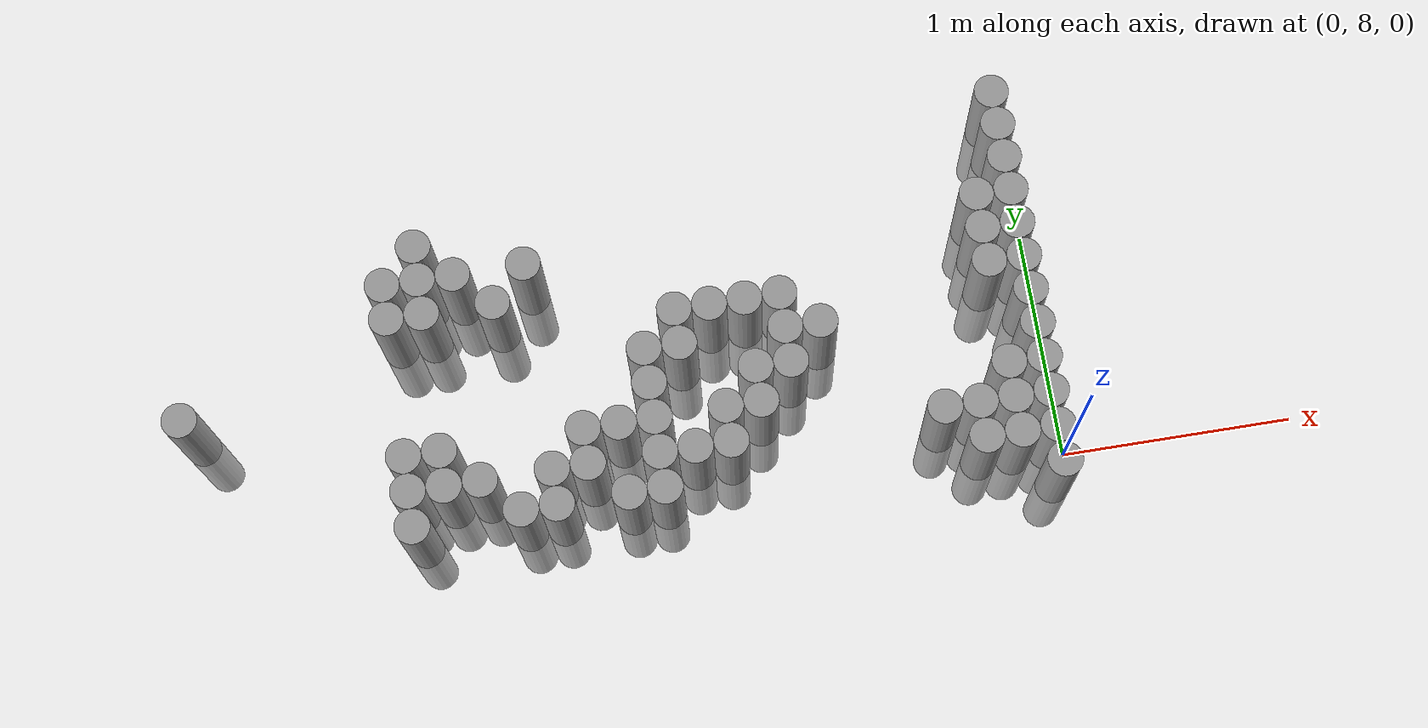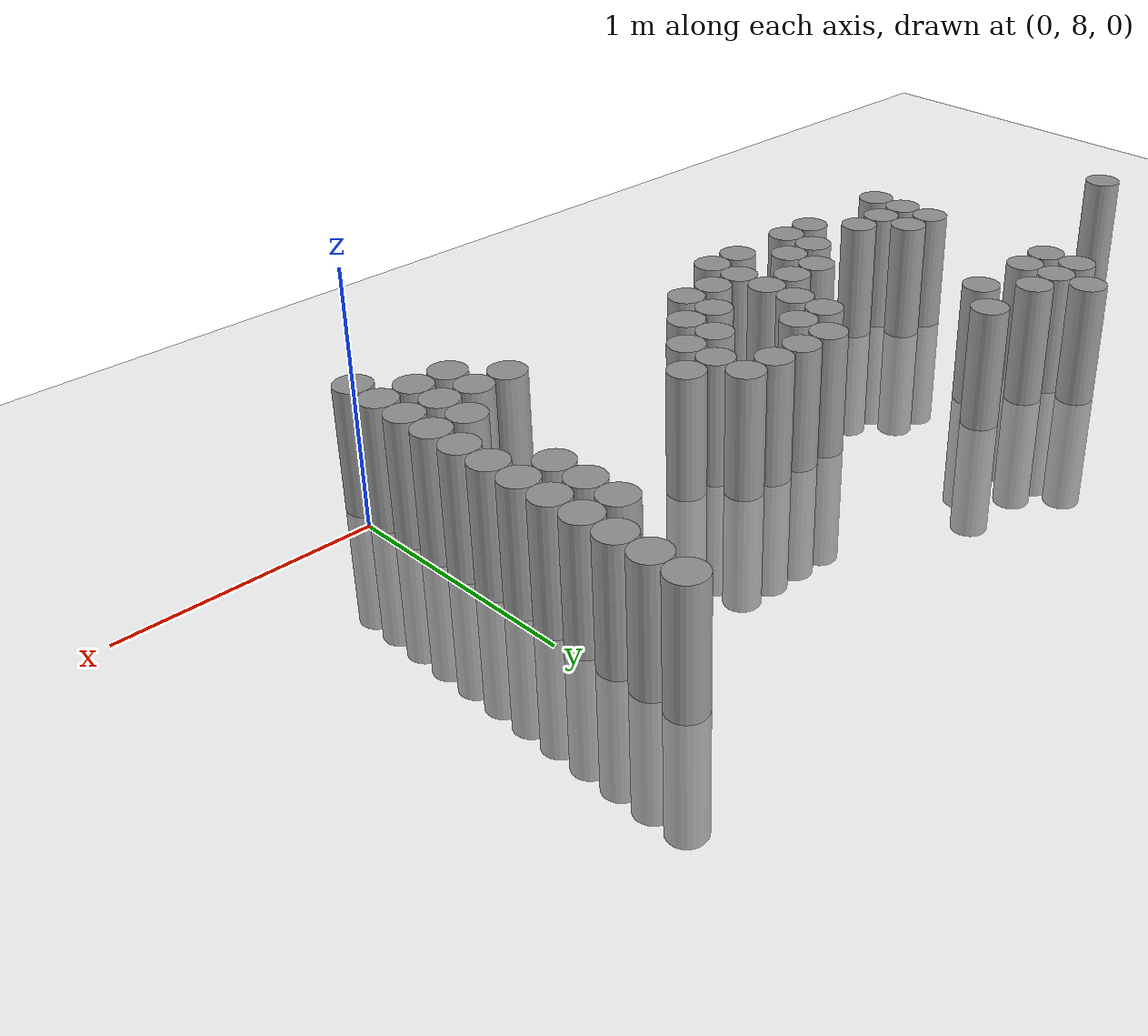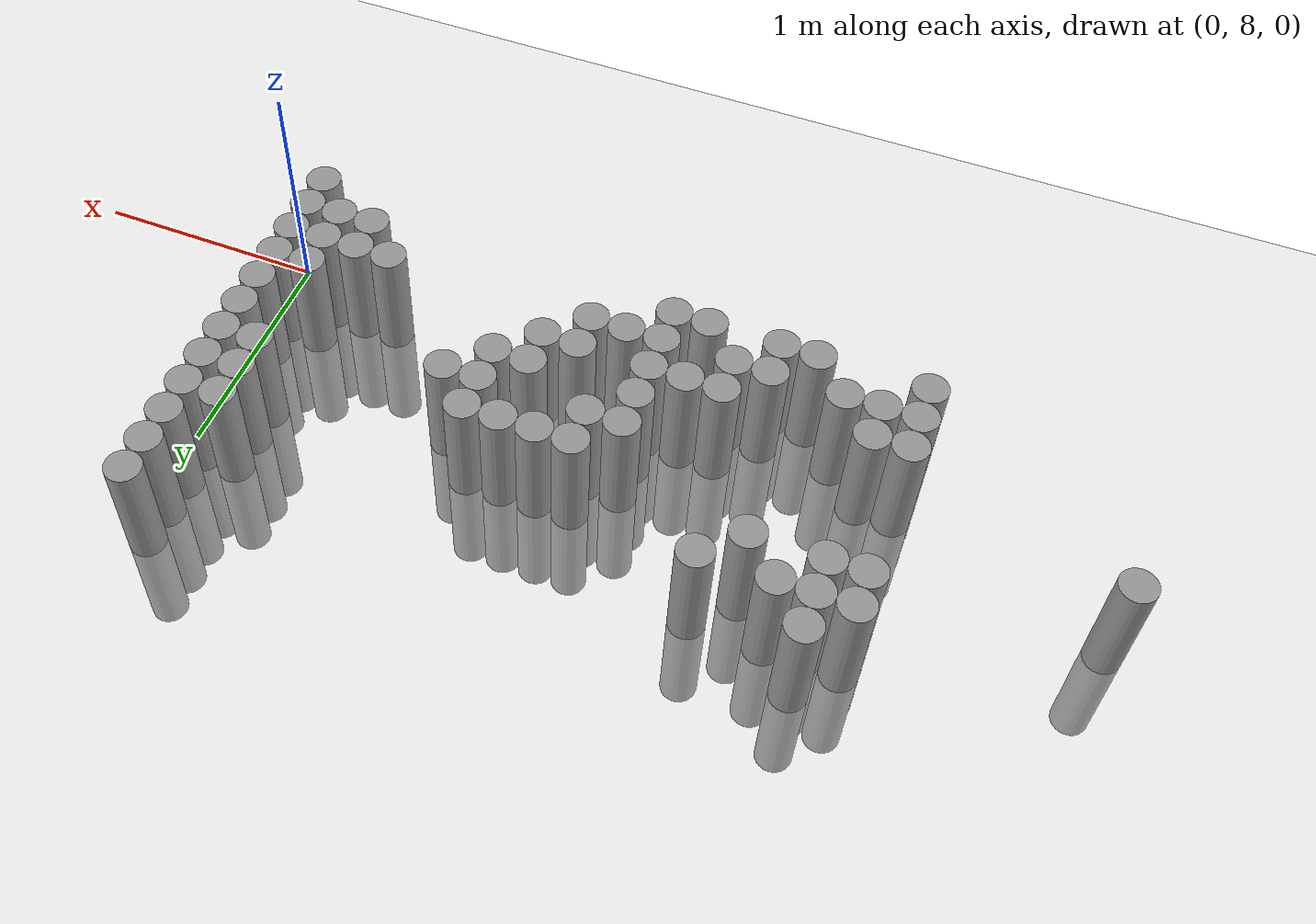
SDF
<sdf version="1.6">
 <world name="default">
  <model name="ground_plane">
   <static>1</static>
   <static>1</static>
   <link name="link">
    <collision name="collision">
     <geometry><plane><normal>0 0 1</normal><size>100 100</size></plane></geometry>
     <surface><friction><ode><mu>100</mu><mu2>50</mu2></ode></friction></surface>
    </collision>
    <visual name="visual">
     <cast_shadows>0</cast_shadows>
     <geometry><plane><normal>0 0 1</normal><size>100 100</size></plane></geometry>
     <material>
      <script><uri>file://media/materials/scripts/gazebo.material</uri><name>Gazebo/Grey</name></script>
     </material>
    </visual>
   </link>
  </model>
  <model name="unit_cylinder_174">
   <static>1</static>
   <pose>-3.675000 8.625000 0.000000 0.000000 0.000000 0.000000</pose>
   <link name="link">
    <inertial>
     <mass>1</mass>
     <inertia><ixx>0.145833</ixx><ixy>0</ixy><ixz>0</ixz><iyy>0.145833</iyy><iyz>0</iyz><izz>0.125</izz></inertia>
    </inertial>
    <collision name="collision">
     <geometry><cylinder><radius>0.075000</radius><length>1</length></cylinder></geometry>
    </collision>
    <visual name="visual">
     <geometry><cylinder><radius>0.075000</radius><length>1</length></cylinder></geometry>
     <material>
      <script><name>Gazebo/Grey</name><uri>file://media/materials/scripts/gazebo.material</uri></script>
     </material>
    </visual>
   </link>
  </model>
  <model name="unit_cylinder_180">
   <static>1</static>
   <pose>-2.775000 8.025000 0.000000 0.000000 0.000000 0.000000</pose>
   <link name="link">
    <inertial>
     <mass>1</mass>
     <inertia><ixx>0.145833</ixx><ixy>0</ixy><ixz>0</ixz><iyy>0.145833</iyy><iyz>0</iyz><izz>0.125</izz></inertia>
    </inertial>
    <collision name="collision">
     <geometry><cylinder><radius>0.075000</radius><length>1</length></cylinder></geometry>
    </collision>
    <visual name="visual">
     <geometry><cylinder><radius>0.075000</radius><length>1</length></cylinder></geometry>
     <material>
      <script><name>Gazebo/Grey</name><uri>file://media/materials/scripts/gazebo.material</uri></script>
     </material>
    </visual>
   </link>
  </model>
  <model name="unit_cylinder_181">
   <static>1</static>
   <pose>-2.775000 8.175000 0.000000 0.000000 0.000000 0.000000</pose>
   <link name="link">
    <inertial>
     <mass>1</mass>
     <inertia><ixx>0.145833</ixx><ixy>0</ixy><ixz>0</ixz><iyy>0.145833</iyy><iyz>0</iyz><izz>0.125</izz></inertia>
    </inertial>
    <collision name="collision">
     <geometry><cylinder><radius>0.075000</radius><length>1</length></cylinder></geometry>
    </collision>
    <visual name="visual">
     <geometry><cylinder><radius>0.075000</radius><length>1</length></cylinder></geometry>
     <material>
      <script><name>Gazebo/Grey</name><uri>file://media/materials/scripts/gazebo.material</uri></script>
     </material>
    </visual>
   </link>
  </model>
  <model name="unit_cylinder_182">
   <static>1</static>
   <pose>-2.775000 8.325000 0.000000 0.000000 0.000000 0.000000</pose>
   <link name="link">
    <inertial>
     <mass>1</mass>
     <inertia><ixx>0.145833</ixx><ixy>0</ixy><ixz>0</ixz><iyy>0.145833</iyy><iyz>0</iyz><izz>0.125</izz></inertia>
    </inertial>
    <collision name="collision">
     <geometry><cylinder><radius>0.075000</radius><length>1</length></cylinder></geometry>
    </collision>
    <visual name="visual">
     <geometry><cylinder><radius>0.075000</radius><length>1</length></cylinder></geometry>
     <material>
      <script><name>Gazebo/Grey</name><uri>file://media/materials/scripts/gazebo.material</uri></script>
     </material>
    </visual>
   </link>
  </model>
  <model name="unit_cylinder_183">
   <static>1</static>
   <pose>-2.775000 8.925000 0.000000 0.000000 0.000000 0.000000</pose>
   <link name="link">
    <inertial>
     <mass>1</mass>
     <inertia><ixx>0.145833</ixx><ixy>0</ixy><ixz>0</ixz><iyy>0.145833</iyy><iyz>0</iyz><izz>0.125</izz></inertia>
    </inertial>
    <collision name="collision">
     <geometry><cylinder><radius>0.075000</radius><length>1</length></cylinder></geometry>
    </collision>
    <visual name="visual">
     <geometry><cylinder><radius>0.075000</radius><length>1</length></cylinder></geometry>
     <material>
      <script><name>Gazebo/Grey</name><uri>file://media/materials/scripts/gazebo.material</uri></script>
     </material>
    </visual>
   </link>
  </model>
  <model name="unit_cylinder_184">
   <static>1</static>
   <pose>-2.775000 9.075000 0.000000 0.000000 0.000000 0.000000</pose>
   <link name="link">
    <inertial>
     <mass>1</mass>
     <inertia><ixx>0.145833</ixx><ixy>0</ixy><ixz>0</ixz><iyy>0.145833</iyy><iyz>0</iyz><izz>0.125</izz></inertia>
    </inertial>
    <collision name="collision">
     <geometry><cylinder><radius>0.075000</radius><length>1</length></cylinder></geometry>
    </collision>
    <visual name="visual">
     <geometry><cylinder><radius>0.075000</radius><length>1</length></cylinder></geometry>
     <material>
      <script><name>Gazebo/Grey</name><uri>file://media/materials/scripts/gazebo.material</uri></script>
     </material>
    </visual>
   </link>
  </model>
  <model name="unit_cylinder_185">
   <static>1</static>
   <pose>-2.625000 8.175000 0.000000 0.000000 0.000000 0.000000</pose>
   <link name="link">
    <inertial>
     <mass>1</mass>
     <inertia><ixx>0.145833</ixx><ixy>0</ixy><ixz>0</ixz><iyy>0.145833</iyy><iyz>0</iyz><izz>0.125</izz></inertia>
    </inertial>
    <collision name="collision">
     <geometry><cylinder><radius>0.075000</radius><length>1</length></cylinder></geometry>
    </collision>
    <visual name="visual">
     <geometry><cylinder><radius>0.075000</radius><length>1</length></cylinder></geometry>
     <material>
      <script><name>Gazebo/Grey</name><uri>file://media/materials/scripts/gazebo.material</uri></script>
     </material>
    </visual>
   </link>
  </model>
  <model name="unit_cylinder_186">
   <static>1</static>
   <pose>-2.625000 8.325000 0.000000 0.000000 0.000000 0.000000</pose>
   <link name="link">
    <inertial>
     <mass>1</mass>
     <inertia><ixx>0.145833</ixx><ixy>0</ixy><ixz>0</ixz><iyy>0.145833</iyy><iyz>0</iyz><izz>0.125</izz></inertia>
    </inertial>
    <collision name="collision">
     <geometry><cylinder><radius>0.075000</radius><length>1</length></cylinder></geometry>
    </collision>
    <visual name="visual">
     <geometry><cylinder><radius>0.075000</radius><length>1</length></cylinder></geometry>
     <material>
      <script><name>Gazebo/Grey</name><uri>file://media/materials/scripts/gazebo.material</uri></script>
     </material>
    </visual>
   </link>
  </model>
  <model name="unit_cylinder_187">
   <static>1</static>
   <pose>-2.625000 8.925000 0.000000 0.000000 0.000000 0.000000</pose>
   <link name="link">
    <inertial>
     <mass>1</mass>
     <inertia><ixx>0.145833</ixx><ixy>0</ixy><ixz>0</ixz><iyy>0.145833</iyy><iyz>0</iyz><izz>0.125</izz></inertia>
    </inertial>
    <collision name="collision">
     <geometry><cylinder><radius>0.075000</radius><length>1</length></cylinder></geometry>
    </collision>
    <visual name="visual">
     <geometry><cylinder><radius>0.075000</radius><length>1</length></cylinder></geometry>
     <material>
      <script><name>Gazebo/Grey</name><uri>file://media/materials/scripts/gazebo.material</uri></script>
     </material>
    </visual>
   </link>
  </model>
  <model name="unit_cylinder_188">
   <static>1</static>
   <pose>-2.625000 9.075000 0.000000 0.000000 0.000000 0.000000</pose>
   <link name="link">
    <inertial>
     <mass>1</mass>
     <inertia><ixx>0.145833</ixx><ixy>0</ixy><ixz>0</ixz><iyy>0.145833</iyy><iyz>0</iyz><izz>0.125</izz></inertia>
    </inertial>
    <collision name="collision">
     <geometry><cylinder><radius>0.075000</radius><length>1</length></cylinder></geometry>
    </collision>
    <visual name="visual">
     <geometry><cylinder><radius>0.075000</radius><length>1</length></cylinder></geometry>
     <material>
      <script><name>Gazebo/Grey</name><uri>file://media/materials/scripts/gazebo.material</uri></script>
     </material>
    </visual>
   </link>
  </model>
  <model name="unit_cylinder_189">
   <static>1</static>
   <pose>-2.625000 9.225000 0.000000 0.000000 0.000000 0.000000</pose>
   <link name="link">
    <inertial>
     <mass>1</mass>
     <inertia><ixx>0.145833</ixx><ixy>0</ixy><ixz>0</ixz><iyy>0.145833</iyy><iyz>0</iyz><izz>0.125</izz></inertia>
    </inertial>
    <collision name="collision">
     <geometry><cylinder><radius>0.075000</radius><length>1</length></cylinder></geometry>
    </collision>
    <visual name="visual">
     <geometry><cylinder><radius>0.075000</radius><length>1</length></cylinder></geometry>
     <material>
      <script><name>Gazebo/Grey</name><uri>file://media/materials/scripts/gazebo.material</uri></script>
     </material>
    </visual>
   </link>
  </model>
  <model name="unit_cylinder_190">
   <static>1</static>
   <pose>-2.475000 8.175000 0.000000 0.000000 0.000000 0.000000</pose>
   <link name="link">
    <inertial>
     <mass>1</mass>
     <inertia><ixx>0.145833</ixx><ixy>0</ixy><ixz>0</ixz><iyy>0.145833</iyy><iyz>0</iyz><izz>0.125</izz></inertia>
    </inertial>
    <collision name="collision">
     <geometry><cylinder><radius>0.075000</radius><length>1</length></cylinder></geometry>
    </collision>
    <visual name="visual">
     <geometry><cylinder><radius>0.075000</radius><length>1</length></cylinder></geometry>
     <material>
      <script><name>Gazebo/Grey</name><uri>file://media/materials/scripts/gazebo.material</uri></script>
     </material>
    </visual>
   </link>
  </model>
  <model name="unit_cylinder_191">
   <static>1</static>
   <pose>-2.475000 9.075000 0.000000 0.000000 0.000000 0.000000</pose>
   <link name="link">
    <inertial>
     <mass>1</mass>
     <inertia><ixx>0.145833</ixx><ixy>0</ixy><ixz>0</ixz><iyy>0.145833</iyy><iyz>0</iyz><izz>0.125</izz></inertia>
    </inertial>
    <collision name="collision">
     <geometry><cylinder><radius>0.075000</radius><length>1</length></cylinder></geometry>
    </collision>
    <visual name="visual">
     <geometry><cylinder><radius>0.075000</radius><length>1</length></cylinder></geometry>
     <material>
      <script><name>Gazebo/Grey</name><uri>file://media/materials/scripts/gazebo.material</uri></script>
     </material>
    </visual>
   </link>
  </model>
  <model name="unit_cylinder_193">
   <static>1</static>
   <pose>-2.325000 8.025000 0.000000 0.000000 0.000000 0.000000</pose>
   <link name="link">
    <inertial>
     <mass>1</mass>
     <inertia><ixx>0.145833</ixx><ixy>0</ixy><ixz>0</ixz><iyy>0.145833</iyy><iyz>0</iyz><izz>0.125</izz></inertia>
    </inertial>
    <collision name="collision">
     <geometry><cylinder><radius>0.075000</radius><length>1</length></cylinder></geometry>
    </collision>
    <visual name="visual">
     <geometry><cylinder><radius>0.075000</radius><length>1</length></cylinder></geometry>
     <material>
      <script><name>Gazebo/Grey</name><uri>file://media/materials/scripts/gazebo.material</uri></script>
     </material>
    </visual>
   </link>
  </model>
  <model name="unit_cylinder_194">
   <static>1</static>
   <pose>-2.325000 8.925000 0.000000 0.000000 0.000000 0.000000</pose>
   <link name="link">
    <inertial>
     <mass>1</mass>
     <inertia><ixx>0.145833</ixx><ixy>0</ixy><ixz>0</ixz><iyy>0.145833</iyy><iyz>0</iyz><izz>0.125</izz></inertia>
    </inertial>
    <collision name="collision">
     <geometry><cylinder><radius>0.075000</radius><length>1</length></cylinder></geometry>
    </collision>
    <visual name="visual">
     <geometry><cylinder><radius>0.075000</radius><length>1</length></cylinder></geometry>
     <material>
      <script><name>Gazebo/Grey</name><uri>file://media/materials/scripts/gazebo.material</uri></script>
     </material>
    </visual>
   </link>
  </model>
  <model name="unit_cylinder_197">
   <static>1</static>
   <pose>-2.175000 8.025000 0.000000 0.000000 0.000000 0.000000</pose>
   <link name="link">
    <inertial>
     <mass>1</mass>
     <inertia><ixx>0.145833</ixx><ixy>0</ixy><ixz>0</ixz><iyy>0.145833</iyy><iyz>0</iyz><izz>0.125</izz></inertia>
    </inertial>
    <collision name="collision">
     <geometry><cylinder><radius>0.075000</radius><length>1</length></cylinder></geometry>
    </collision>
    <visual name="visual">
     <geometry><cylinder><radius>0.075000</radius><length>1</length></cylinder></geometry>
     <material>
      <script><name>Gazebo/Grey</name><uri>file://media/materials/scripts/gazebo.material</uri></script>
     </material>
    </visual>
   </link>
  </model>
  <model name="unit_cylinder_198">
   <static>1</static>
   <pose>-2.175000 8.175000 0.000000 0.000000 0.000000 0.000000</pose>
   <link name="link">
    <inertial>
     <mass>1</mass>
     <inertia><ixx>0.145833</ixx><ixy>0</ixy><ixz>0</ixz><iyy>0.145833</iyy><iyz>0</iyz><izz>0.125</izz></inertia>
    </inertial>
    <collision name="collision">
     <geometry><cylinder><radius>0.075000</radius><length>1</length></cylinder></geometry>
    </collision>
    <visual name="visual">
     <geometry><cylinder><radius>0.075000</radius><length>1</length></cylinder></geometry>
     <material>
      <script><name>Gazebo/Grey</name><uri>file://media/materials/scripts/gazebo.material</uri></script>
     </material>
    </visual>
   </link>
  </model>
  <model name="unit_cylinder_199">
   <static>1</static>
   <pose>-2.175000 9.075000 0.000000 0.000000 0.000000 0.000000</pose>
   <link name="link">
    <inertial>
     <mass>1</mass>
     <inertia><ixx>0.145833</ixx><ixy>0</ixy><ixz>0</ixz><iyy>0.145833</iyy><iyz>0</iyz><izz>0.125</izz></inertia>
    </inertial>
    <collision name="collision">
     <geometry><cylinder><radius>0.075000</radius><length>1</length></cylinder></geometry>
    </collision>
    <visual name="visual">
     <geometry><cylinder><radius>0.075000</radius><length>1</length></cylinder></geometry>
     <material>
      <script><name>Gazebo/Grey</name><uri>file://media/materials/scripts/gazebo.material</uri></script>
     </material>
    </visual>
   </link>
  </model>
  <model name="unit_cylinder_207">
   <static>1</static>
   <pose>-2.025000 8.175000 0.000000 0.000000 0.000000 0.000000</pose>
   <link name="link">
    <inertial>
     <mass>1</mass>
     <inertia><ixx>0.145833</ixx><ixy>0</ixy><ixz>0</ixz><iyy>0.145833</iyy><iyz>0</iyz><izz>0.125</izz></inertia>
    </inertial>
    <collision name="collision">
     <geometry><cylinder><radius>0.075000</radius><length>1</length></cylinder></geometry>
    </collision>
    <visual name="visual">
     <geometry><cylinder><radius>0.075000</radius><length>1</length></cylinder></geometry>
     <material>
      <script><name>Gazebo/Grey</name><uri>file://media/materials/scripts/gazebo.material</uri></script>
     </material>
    </visual>
   </link>
  </model>
  <model name="unit_cylinder_208">
   <static>1</static>
   <pose>-2.025000 8.325000 0.000000 0.000000 0.000000 0.000000</pose>
   <link name="link">
    <inertial>
     <mass>1</mass>
     <inertia><ixx>0.145833</ixx><ixy>0</ixy><ixz>0</ixz><iyy>0.145833</iyy><iyz>0</iyz><izz>0.125</izz></inertia>
    </inertial>
    <collision name="collision">
     <geometry><cylinder><radius>0.075000</radius><length>1</length></cylinder></geometry>
    </collision>
    <visual name="visual">
     <geometry><cylinder><radius>0.075000</radius><length>1</length></cylinder></geometry>
     <material>
      <script><name>Gazebo/Grey</name><uri>file://media/materials/scripts/gazebo.material</uri></script>
     </material>
    </visual>
   </link>
  </model>
  <model name="unit_cylinder_212">
   <static>1</static>
   <pose>-1.875000 8.025000 0.000000 0.000000 0.000000 0.000000</pose>
   <link name="link">
    <inertial>
     <mass>1</mass>
     <inertia><ixx>0.145833</ixx><ixy>0</ixy><ixz>0</ixz><iyy>0.145833</iyy><iyz>0</iyz><izz>0.125</izz></inertia>
    </inertial>
    <collision name="collision">
     <geometry><cylinder><radius>0.075000</radius><length>1</length></cylinder></geometry>
    </collision>
    <visual name="visual">
     <geometry><cylinder><radius>0.075000</radius><length>1</length></cylinder></geometry>
     <material>
      <script><name>Gazebo/Grey</name><uri>file://media/materials/scripts/gazebo.material</uri></script>
     </material>
    </visual>
   </link>
  </model>
  <model name="unit_cylinder_213">
   <static>1</static>
   <pose>-1.875000 8.325000 0.000000 0.000000 0.000000 0.000000</pose>
   <link name="link">
    <inertial>
     <mass>1</mass>
     <inertia><ixx>0.145833</ixx><ixy>0</ixy><ixz>0</ixz><iyy>0.145833</iyy><iyz>0</iyz><izz>0.125</izz></inertia>
    </inertial>
    <collision name="collision">
     <geometry><cylinder><radius>0.075000</radius><length>1</length></cylinder></geometry>
    </collision>
    <visual name="visual">
     <geometry><cylinder><radius>0.075000</radius><length>1</length></cylinder></geometry>
     <material>
      <script><name>Gazebo/Grey</name><uri>file://media/materials/scripts/gazebo.material</uri></script>
     </material>
    </visual>
   </link>
  </model>
  <model name="unit_cylinder_214">
   <static>1</static>
   <pose>-1.725000 8.025000 0.000000 0.000000 0.000000 0.000000</pose>
   <link name="link">
    <inertial>
     <mass>1</mass>
     <inertia><ixx>0.145833</ixx><ixy>0</ixy><ixz>0</ixz><iyy>0.145833</iyy><iyz>0</iyz><izz>0.125</izz></inertia>
    </inertial>
    <collision name="collision">
     <geometry><cylinder><radius>0.075000</radius><length>1</length></cylinder></geometry>
    </collision>
    <visual name="visual">
     <geometry><cylinder><radius>0.075000</radius><length>1</length></cylinder></geometry>
     <material>
      <script><name>Gazebo/Grey</name><uri>file://media/materials/scripts/gazebo.material</uri></script>
     </material>
    </visual>
   </link>
  </model>
  <model name="unit_cylinder_215">
   <static>1</static>
   <pose>-1.725000 8.175000 0.000000 0.000000 0.000000 0.000000</pose>
   <link name="link">
    <inertial>
     <mass>1</mass>
     <inertia><ixx>0.145833</ixx><ixy>0</ixy><ixz>0</ixz><iyy>0.145833</iyy><iyz>0</iyz><izz>0.125</izz></inertia>
    </inertial>
    <collision name="collision">
     <geometry><cylinder><radius>0.075000</radius><length>1</length></cylinder></geometry>
    </collision>
    <visual name="visual">
     <geometry><cylinder><radius>0.075000</radius><length>1</length></cylinder></geometry>
     <material>
      <script><name>Gazebo/Grey</name><uri>file://media/materials/scripts/gazebo.material</uri></script>
     </material>
    </visual>
   </link>
  </model>
  <model name="unit_cylinder_216">
   <static>1</static>
   <pose>-1.725000 8.325000 0.000000 0.000000 0.000000 0.000000</pose>
   <link name="link">
    <inertial>
     <mass>1</mass>
     <inertia><ixx>0.145833</ixx><ixy>0</ixy><ixz>0</ixz><iyy>0.145833</iyy><iyz>0</iyz><izz>0.125</izz></inertia>
    </inertial>
    <collision name="collision">
     <geometry><cylinder><radius>0.075000</radius><length>1</length></cylinder></geometry>
    </collision>
    <visual name="visual">
     <geometry><cylinder><radius>0.075000</radius><length>1</length></cylinder></geometry>
     <material>
      <script><name>Gazebo/Grey</name><uri>file://media/materials/scripts/gazebo.material</uri></script>
     </material>
    </visual>
   </link>
  </model>
  <model name="unit_cylinder_217">
   <static>1</static>
   <pose>-1.725000 8.475000 0.000000 0.000000 0.000000 0.000000</pose>
   <link name="link">
    <inertial>
     <mass>1</mass>
     <inertia><ixx>0.145833</ixx><ixy>0</ixy><ixz>0</ixz><iyy>0.145833</iyy><iyz>0</iyz><izz>0.125</izz></inertia>
    </inertial>
    <collision name="collision">
     <geometry><cylinder><radius>0.075000</radius><length>1</length></cylinder></geometry>
    </collision>
    <visual name="visual">
     <geometry><cylinder><radius>0.075000</radius><length>1</length></cylinder></geometry>
     <material>
      <script><name>Gazebo/Grey</name><uri>file://media/materials/scripts/gazebo.material</uri></script>
     </material>
    </visual>
   </link>
  </model>
  <model name="unit_cylinder_218">
   <static>1</static>
   <pose>-1.725000 8.625000 0.000000 0.000000 0.000000 0.000000</pose>
   <link name="link">
    <inertial>
     <mass>1</mass>
     <inertia><ixx>0.145833</ixx><ixy>0</ixy><ixz>0</ixz><iyy>0.145833</iyy><iyz>0</iyz><izz>0.125</izz></inertia>
    </inertial>
    <collision name="collision">
     <geometry><cylinder><radius>0.075000</radius><length>1</length></cylinder></geometry>
    </collision>
    <visual name="visual">
     <geometry><cylinder><radius>0.075000</radius><length>1</length></cylinder></geometry>
     <material>
      <script><name>Gazebo/Grey</name><uri>file://media/materials/scripts/gazebo.material</uri></script>
     </material>
    </visual>
   </link>
  </model>
  <model name="unit_cylinder_220">
   <static>1</static>
   <pose>-1.575000 8.175000 0.000000 0.000000 0.000000 0.000000</pose>
   <link name="link">
    <inertial>
     <mass>1</mass>
     <inertia><ixx>0.145833</ixx><ixy>0</ixy><ixz>0</ixz><iyy>0.145833</iyy><iyz>0</iyz><izz>0.125</izz></inertia>
    </inertial>
    <collision name="collision">
     <geometry><cylinder><radius>0.075000</radius><length>1</length></cylinder></geometry>
    </collision>
    <visual name="visual">
     <geometry><cylinder><radius>0.075000</radius><length>1</length></cylinder></geometry>
     <material>
      <script><name>Gazebo/Grey</name><uri>file://media/materials/scripts/gazebo.material</uri></script>
     </material>
    </visual>
   </link>
  </model>
  <model name="unit_cylinder_221">
   <static>1</static>
   <pose>-1.575000 8.625000 0.000000 0.000000 0.000000 0.000000</pose>
   <link name="link">
    <inertial>
     <mass>1</mass>
     <inertia><ixx>0.145833</ixx><ixy>0</ixy><ixz>0</ixz><iyy>0.145833</iyy><iyz>0</iyz><izz>0.125</izz></inertia>
    </inertial>
    <collision name="collision">
     <geometry><cylinder><radius>0.075000</radius><length>1</length></cylinder></geometry>
    </collision>
    <visual name="visual">
     <geometry><cylinder><radius>0.075000</radius><length>1</length></cylinder></geometry>
     <material>
      <script><name>Gazebo/Grey</name><uri>file://media/materials/scripts/gazebo.material</uri></script>
     </material>
    </visual>
   </link>
  </model>
  <model name="unit_cylinder_222">
   <static>1</static>
   <pose>-1.575000 8.775000 0.000000 0.000000 0.000000 0.000000</pose>
   <link name="link">
    <inertial>
     <mass>1</mass>
     <inertia><ixx>0.145833</ixx><ixy>0</ixy><ixz>0</ixz><iyy>0.145833</iyy><iyz>0</iyz><izz>0.125</izz></inertia>
    </inertial>
    <collision name="collision">
     <geometry><cylinder><radius>0.075000</radius><length>1</length></cylinder></geometry>
    </collision>
    <visual name="visual">
     <geometry><cylinder><radius>0.075000</radius><length>1</length></cylinder></geometry>
     <material>
      <script><name>Gazebo/Grey</name><uri>file://media/materials/scripts/gazebo.material</uri></script>
     </material>
    </visual>
   </link>
  </model>
  <model name="unit_cylinder_226">
   <static>1</static>
   <pose>-1.425000 8.175000 0.000000 0.000000 0.000000 0.000000</pose>
   <link name="link">
    <inertial>
     <mass>1</mass>
     <inertia><ixx>0.145833</ixx><ixy>0</ixy><ixz>0</ixz><iyy>0.145833</iyy><iyz>0</iyz><izz>0.125</izz></inertia>
    </inertial>
    <collision name="collision">
     <geometry><cylinder><radius>0.075000</radius><length>1</length></cylinder></geometry>
    </collision>
    <visual name="visual">
     <geometry><cylinder><radius>0.075000</radius><length>1</length></cylinder></geometry>
     <material>
      <script><name>Gazebo/Grey</name><uri>file://media/materials/scripts/gazebo.material</uri></script>
     </material>
    </visual>
   </link>
  </model>
  <model name="unit_cylinder_227">
   <static>1</static>
   <pose>-1.425000 8.325000 0.000000 0.000000 0.000000 0.000000</pose>
   <link name="link">
    <inertial>
     <mass>1</mass>
     <inertia><ixx>0.145833</ixx><ixy>0</ixy><ixz>0</ixz><iyy>0.145833</iyy><iyz>0</iyz><izz>0.125</izz></inertia>
    </inertial>
    <collision name="collision">
     <geometry><cylinder><radius>0.075000</radius><length>1</length></cylinder></geometry>
    </collision>
    <visual name="visual">
     <geometry><cylinder><radius>0.075000</radius><length>1</length></cylinder></geometry>
     <material>
      <script><name>Gazebo/Grey</name><uri>file://media/materials/scripts/gazebo.material</uri></script>
     </material>
    </visual>
   </link>
  </model>
  <model name="unit_cylinder_228">
   <static>1</static>
   <pose>-1.425000 8.775000 0.000000 0.000000 0.000000 0.000000</pose>
   <link name="link">
    <inertial>
     <mass>1</mass>
     <inertia><ixx>0.145833</ixx><ixy>0</ixy><ixz>0</ixz><iyy>0.145833</iyy><iyz>0</iyz><izz>0.125</izz></inertia>
    </inertial>
    <collision name="collision">
     <geometry><cylinder><radius>0.075000</radius><length>1</length></cylinder></geometry>
    </collision>
    <visual name="visual">
     <geometry><cylinder><radius>0.075000</radius><length>1</length></cylinder></geometry>
     <material>
      <script><name>Gazebo/Grey</name><uri>file://media/materials/scripts/gazebo.material</uri></script>
     </material>
    </visual>
   </link>
  </model>
  <model name="unit_cylinder_233">
   <static>1</static>
   <pose>-1.275000 8.325000 0.000000 0.000000 0.000000 0.000000</pose>
   <link name="link">
    <inertial>
     <mass>1</mass>
     <inertia><ixx>0.145833</ixx><ixy>0</ixy><ixz>0</ixz><iyy>0.145833</iyy><iyz>0</iyz><izz>0.125</izz></inertia>
    </inertial>
    <collision name="collision">
     <geometry><cylinder><radius>0.075000</radius><length>1</length></cylinder></geometry>
    </collision>
    <visual name="visual">
     <geometry><cylinder><radius>0.075000</radius><length>1</length></cylinder></geometry>
     <material>
      <script><name>Gazebo/Grey</name><uri>file://media/materials/scripts/gazebo.material</uri></script>
     </material>
    </visual>
   </link>
  </model>
  <model name="unit_cylinder_234">
   <static>1</static>
   <pose>-1.275000 8.475000 0.000000 0.000000 0.000000 0.000000</pose>
   <link name="link">
    <inertial>
     <mass>1</mass>
     <inertia><ixx>0.145833</ixx><ixy>0</ixy><ixz>0</ixz><iyy>0.145833</iyy><iyz>0</iyz><izz>0.125</izz></inertia>
    </inertial>
    <collision name="collision">
     <geometry><cylinder><radius>0.075000</radius><length>1</length></cylinder></geometry>
    </collision>
    <visual name="visual">
     <geometry><cylinder><radius>0.075000</radius><length>1</length></cylinder></geometry>
     <material>
      <script><name>Gazebo/Grey</name><uri>file://media/materials/scripts/gazebo.material</uri></script>
     </material>
    </visual>
   </link>
  </model>
  <model name="unit_cylinder_235">
   <static>1</static>
   <pose>-1.275000 8.775000 0.000000 0.000000 0.000000 0.000000</pose>
   <link name="link">
    <inertial>
     <mass>1</mass>
     <inertia><ixx>0.145833</ixx><ixy>0</ixy><ixz>0</ixz><iyy>0.145833</iyy><iyz>0</iyz><izz>0.125</izz></inertia>
    </inertial>
    <collision name="collision">
     <geometry><cylinder><radius>0.075000</radius><length>1</length></cylinder></geometry>
    </collision>
    <visual name="visual">
     <geometry><cylinder><radius>0.075000</radius><length>1</length></cylinder></geometry>
     <material>
      <script><name>Gazebo/Grey</name><uri>file://media/materials/scripts/gazebo.material</uri></script>
     </material>
    </visual>
   </link>
  </model>
  <model name="unit_cylinder_239">
   <static>1</static>
   <pose>-1.125000 8.475000 0.000000 0.000000 0.000000 0.000000</pose>
   <link name="link">
    <inertial>
     <mass>1</mass>
     <inertia><ixx>0.145833</ixx><ixy>0</ixy><ixz>0</ixz><iyy>0.145833</iyy><iyz>0</iyz><izz>0.125</izz></inertia>
    </inertial>
    <collision name="collision">
     <geometry><cylinder><radius>0.075000</radius><length>1</length></cylinder></geometry>
    </collision>
    <visual name="visual">
     <geometry><cylinder><radius>0.075000</radius><length>1</length></cylinder></geometry>
     <material>
      <script><name>Gazebo/Grey</name><uri>file://media/materials/scripts/gazebo.material</uri></script>
     </material>
    </visual>
   </link>
  </model>
  <model name="unit_cylinder_240">
   <static>1</static>
   <pose>-1.125000 8.625000 0.000000 0.000000 0.000000 0.000000</pose>
   <link name="link">
    <inertial>
     <mass>1</mass>
     <inertia><ixx>0.145833</ixx><ixy>0</ixy><ixz>0</ixz><iyy>0.145833</iyy><iyz>0</iyz><izz>0.125</izz></inertia>
    </inertial>
    <collision name="collision">
     <geometry><cylinder><radius>0.075000</radius><length>1</length></cylinder></geometry>
    </collision>
    <visual name="visual">
     <geometry><cylinder><radius>0.075000</radius><length>1</length></cylinder></geometry>
     <material>
      <script><name>Gazebo/Grey</name><uri>file://media/materials/scripts/gazebo.material</uri></script>
     </material>
    </visual>
   </link>
  </model>
  <model name="unit_cylinder_241">
   <static>1</static>
   <pose>-1.125000 8.775000 0.000000 0.000000 0.000000 0.000000</pose>
   <link name="link">
    <inertial>
     <mass>1</mass>
     <inertia><ixx>0.145833</ixx><ixy>0</ixy><ixz>0</ixz><iyy>0.145833</iyy><iyz>0</iyz><izz>0.125</izz></inertia>
    </inertial>
    <collision name="collision">
     <geometry><cylinder><radius>0.075000</radius><length>1</length></cylinder></geometry>
    </collision>
    <visual name="visual">
     <geometry><cylinder><radius>0.075000</radius><length>1</length></cylinder></geometry>
     <material>
      <script><name>Gazebo/Grey</name><uri>file://media/materials/scripts/gazebo.material</uri></script>
     </material>
    </visual>
   </link>
  </model>
  <model name="unit_cylinder_244">
   <static>1</static>
   <pose>-0.975000 8.625000 0.000000 0.000000 0.000000 0.000000</pose>
   <link name="link">
    <inertial>
     <mass>1</mass>
     <inertia><ixx>0.145833</ixx><ixy>0</ixy><ixz>0</ixz><iyy>0.145833</iyy><iyz>0</iyz><izz>0.125</izz></inertia>
    </inertial>
    <collision name="collision">
     <geometry><cylinder><radius>0.075000</radius><length>1</length></cylinder></geometry>
    </collision>
    <visual name="visual">
     <geometry><cylinder><radius>0.075000</radius><length>1</length></cylinder></geometry>
     <material>
      <script><name>Gazebo/Grey</name><uri>file://media/materials/scripts/gazebo.material</uri></script>
     </material>
    </visual>
   </link>
  </model>
  <model name="unit_cylinder_247">
   <static>1</static>
   <pose>-0.525000 8.175000 0.000000 0.000000 0.000000 0.000000</pose>
   <link name="link">
    <inertial>
     <mass>1</mass>
     <inertia><ixx>0.145833</ixx><ixy>0</ixy><ixz>0</ixz><iyy>0.145833</iyy><iyz>0</iyz><izz>0.125</izz></inertia>
    </inertial>
    <collision name="collision">
     <geometry><cylinder><radius>0.075000</radius><length>1</length></cylinder></geometry>
    </collision>
    <visual name="visual">
     <geometry><cylinder><radius>0.075000</radius><length>1</length></cylinder></geometry>
     <material>
      <script><name>Gazebo/Grey</name><uri>file://media/materials/scripts/gazebo.material</uri></script>
     </material>
    </visual>
   </link>
  </model>
  <model name="unit_cylinder_250">
   <static>1</static>
   <pose>-0.375000 8.025000 0.000000 0.000000 0.000000 0.000000</pose>
   <link name="link">
    <inertial>
     <mass>1</mass>
     <inertia><ixx>0.145833</ixx><ixy>0</ixy><ixz>0</ixz><iyy>0.145833</iyy><iyz>0</iyz><izz>0.125</izz></inertia>
    </inertial>
    <collision name="collision">
     <geometry><cylinder><radius>0.075000</radius><length>1</length></cylinder></geometry>
    </collision>
    <visual name="visual">
     <geometry><cylinder><radius>0.075000</radius><length>1</length></cylinder></geometry>
     <material>
      <script><name>Gazebo/Grey</name><uri>file://media/materials/scripts/gazebo.material</uri></script>
     </material>
    </visual>
   </link>
  </model>
  <model name="unit_cylinder_251">
   <static>1</static>
   <pose>-0.375000 8.175000 0.000000 0.000000 0.000000 0.000000</pose>
   <link name="link">
    <inertial>
     <mass>1</mass>
     <inertia><ixx>0.145833</ixx><ixy>0</ixy><ixz>0</ixz><iyy>0.145833</iyy><iyz>0</iyz><izz>0.125</izz></inertia>
    </inertial>
    <collision name="collision">
     <geometry><cylinder><radius>0.075000</radius><length>1</length></cylinder></geometry>
    </collision>
    <visual name="visual">
     <geometry><cylinder><radius>0.075000</radius><length>1</length></cylinder></geometry>
     <material>
      <script><name>Gazebo/Grey</name><uri>file://media/materials/scripts/gazebo.material</uri></script>
     </material>
    </visual>
   </link>
  </model>
  <model name="unit_cylinder_266">
   <static>1</static>
   <pose>-0.225000 8.025000 0.000000 0.000000 0.000000 0.000000</pose>
   <link name="link">
    <inertial>
     <mass>1</mass>
     <inertia><ixx>0.145833</ixx><ixy>0</ixy><ixz>0</ixz><iyy>0.145833</iyy><iyz>0</iyz><izz>0.125</izz></inertia>
    </inertial>
    <collision name="collision">
     <geometry><cylinder><radius>0.075000</radius><length>1</length></cylinder></geometry>
    </collision>
    <visual name="visual">
     <geometry><cylinder><radius>0.075000</radius><length>1</length></cylinder></geometry>
     <material>
      <script><name>Gazebo/Grey</name><uri>file://media/materials/scripts/gazebo.material</uri></script>
     </material>
    </visual>
   </link>
  </model>
  <model name="unit_cylinder_267">
   <static>1</static>
   <pose>-0.225000 8.175000 0.000000 0.000000 0.000000 0.000000</pose>
   <link name="link">
    <inertial>
     <mass>1</mass>
     <inertia><ixx>0.145833</ixx><ixy>0</ixy><ixz>0</ixz><iyy>0.145833</iyy><iyz>0</iyz><izz>0.125</izz></inertia>
    </inertial>
    <collision name="collision">
     <geometry><cylinder><radius>0.075000</radius><length>1</length></cylinder></geometry>
    </collision>
    <visual name="visual">
     <geometry><cylinder><radius>0.075000</radius><length>1</length></cylinder></geometry>
     <material>
      <script><name>Gazebo/Grey</name><uri>file://media/materials/scripts/gazebo.material</uri></script>
     </material>
    </visual>
   </link>
  </model>
  <model name="unit_cylinder_268">
   <static>1</static>
   <pose>-0.225000 8.325000 0.000000 0.000000 0.000000 0.000000</pose>
   <link name="link">
    <inertial>
     <mass>1</mass>
     <inertia><ixx>0.145833</ixx><ixy>0</ixy><ixz>0</ixz><iyy>0.145833</iyy><iyz>0</iyz><izz>0.125</izz></inertia>
    </inertial>
    <collision name="collision">
     <geometry><cylinder><radius>0.075000</radius><length>1</length></cylinder></geometry>
    </collision>
    <visual name="visual">
     <geometry><cylinder><radius>0.075000</radius><length>1</length></cylinder></geometry>
     <material>
      <script><name>Gazebo/Grey</name><uri>file://media/materials/scripts/gazebo.material</uri></script>
     </material>
    </visual>
   </link>
  </model>
  <model name="unit_cylinder_269">
   <static>1</static>
   <pose>-0.225000 8.775000 0.000000 0.000000 0.000000 0.000000</pose>
   <link name="link">
    <inertial>
     <mass>1</mass>
     <inertia><ixx>0.145833</ixx><ixy>0</ixy><ixz>0</ixz><iyy>0.145833</iyy><iyz>0</iyz><izz>0.125</izz></inertia>
    </inertial>
    <collision name="collision">
     <geometry><cylinder><radius>0.075000</radius><length>1</length></cylinder></geometry>
    </collision>
    <visual name="visual">
     <geometry><cylinder><radius>0.075000</radius><length>1</length></cylinder></geometry>
     <material>
      <script><name>Gazebo/Grey</name><uri>file://media/materials/scripts/gazebo.material</uri></script>
     </material>
    </visual>
   </link>
  </model>
  <model name="unit_cylinder_270">
   <static>1</static>
   <pose>-0.225000 8.925000 0.000000 0.000000 0.000000 0.000000</pose>
   <link name="link">
    <inertial>
     <mass>1</mass>
     <inertia><ixx>0.145833</ixx><ixy>0</ixy><ixz>0</ixz><iyy>0.145833</iyy><iyz>0</iyz><izz>0.125</izz></inertia>
    </inertial>
    <collision name="collision">
     <geometry><cylinder><radius>0.075000</radius><length>1</length></cylinder></geometry>
    </collision>
    <visual name="visual">
     <geometry><cylinder><radius>0.075000</radius><length>1</length></cylinder></geometry>
     <material>
      <script><name>Gazebo/Grey</name><uri>file://media/materials/scripts/gazebo.material</uri></script>
     </material>
    </visual>
   </link>
  </model>
  <model name="unit_cylinder_271">
   <static>1</static>
   <pose>-0.225000 9.075000 0.000000 0.000000 0.000000 0.000000</pose>
   <link name="link">
    <inertial>
     <mass>1</mass>
     <inertia><ixx>0.145833</ixx><ixy>0</ixy><ixz>0</ixz><iyy>0.145833</iyy><iyz>0</iyz><izz>0.125</izz></inertia>
    </inertial>
    <collision name="collision">
     <geometry><cylinder><radius>0.075000</radius><length>1</length></cylinder></geometry>
    </collision>
    <visual name="visual">
     <geometry><cylinder><radius>0.075000</radius><length>1</length></cylinder></geometry>
     <material>
      <script><name>Gazebo/Grey</name><uri>file://media/materials/scripts/gazebo.material</uri></script>
     </material>
    </visual>
   </link>
  </model>
  <model name="unit_cylinder_290">
   <static>1</static>
   <pose>-0.075000 7.875000 0.000000 0.000000 0.000000 0.000000</pose>
   <link name="link">
    <inertial>
     <mass>1</mass>
     <inertia><ixx>0.145833</ixx><ixy>0</ixy><ixz>0</ixz><iyy>0.145833</iyy><iyz>0</iyz><izz>0.125</izz></inertia>
    </inertial>
    <collision name="collision">
     <geometry><cylinder><radius>0.075000</radius><length>1</length></cylinder></geometry>
    </collision>
    <visual name="visual">
     <geometry><cylinder><radius>0.075000</radius><length>1</length></cylinder></geometry>
     <material>
      <script><name>Gazebo/Grey</name><uri>file://media/materials/scripts/gazebo.material</uri></script>
     </material>
    </visual>
   </link>
  </model>
  <model name="unit_cylinder_291">
   <static>1</static>
   <pose>-0.075000 8.025000 0.000000 0.000000 0.000000 0.000000</pose>
   <link name="link">
    <inertial>
     <mass>1</mass>
     <inertia><ixx>0.145833</ixx><ixy>0</ixy><ixz>0</ixz><iyy>0.145833</iyy><iyz>0</iyz><izz>0.125</izz></inertia>
    </inertial>
    <collision name="collision">
     <geometry><cylinder><radius>0.075000</radius><length>1</length></cylinder></geometry>
    </collision>
    <visual name="visual">
     <geometry><cylinder><radius>0.075000</radius><length>1</length></cylinder></geometry>
     <material>
      <script><name>Gazebo/Grey</name><uri>file://media/materials/scripts/gazebo.material</uri></script>
     </material>
    </visual>
   </link>
  </model>
  <model name="unit_cylinder_292">
   <static>1</static>
   <pose>-0.075000 8.175000 0.000000 0.000000 0.000000 0.000000</pose>
   <link name="link">
    <inertial>
     <mass>1</mass>
     <inertia><ixx>0.145833</ixx><ixy>0</ixy><ixz>0</ixz><iyy>0.145833</iyy><iyz>0</iyz><izz>0.125</izz></inertia>
    </inertial>
    <collision name="collision">
     <geometry><cylinder><radius>0.075000</radius><length>1</length></cylinder></geometry>
    </collision>
    <visual name="visual">
     <geometry><cylinder><radius>0.075000</radius><length>1</length></cylinder></geometry>
     <material>
      <script><name>Gazebo/Grey</name><uri>file://media/materials/scripts/gazebo.material</uri></script>
     </material>
    </visual>
   </link>
  </model>
  <model name="unit_cylinder_293">
   <static>1</static>
   <pose>-0.075000 8.325000 0.000000 0.000000 0.000000 0.000000</pose>
   <link name="link">
    <inertial>
     <mass>1</mass>
     <inertia><ixx>0.145833</ixx><ixy>0</ixy><ixz>0</ixz><iyy>0.145833</iyy><iyz>0</iyz><izz>0.125</izz></inertia>
    </inertial>
    <collision name="collision">
     <geometry><cylinder><radius>0.075000</radius><length>1</length></cylinder></geometry>
    </collision>
    <visual name="visual">
     <geometry><cylinder><radius>0.075000</radius><length>1</length></cylinder></geometry>
     <material>
      <script><name>Gazebo/Grey</name><uri>file://media/materials/scripts/gazebo.material</uri></script>
     </material>
    </visual>
   </link>
  </model>
  <model name="unit_cylinder_294">
   <static>1</static>
   <pose>-0.075000 8.475000 0.000000 0.000000 0.000000 0.000000</pose>
   <link name="link">
    <inertial>
     <mass>1</mass>
     <inertia><ixx>0.145833</ixx><ixy>0</ixy><ixz>0</ixz><iyy>0.145833</iyy><iyz>0</iyz><izz>0.125</izz></inertia>
    </inertial>
    <collision name="collision">
     <geometry><cylinder><radius>0.075000</radius><length>1</length></cylinder></geometry>
    </collision>
    <visual name="visual">
     <geometry><cylinder><radius>0.075000</radius><length>1</length></cylinder></geometry>
     <material>
      <script><name>Gazebo/Grey</name><uri>file://media/materials/scripts/gazebo.material</uri></script>
     </material>
    </visual>
   </link>
  </model>
  <model name="unit_cylinder_295">
   <static>1</static>
   <pose>-0.075000 8.625000 0.000000 0.000000 0.000000 0.000000</pose>
   <link name="link">
    <inertial>
     <mass>1</mass>
     <inertia><ixx>0.145833</ixx><ixy>0</ixy><ixz>0</ixz><iyy>0.145833</iyy><iyz>0</iyz><izz>0.125</izz></inertia>
    </inertial>
    <collision name="collision">
     <geometry><cylinder><radius>0.075000</radius><length>1</length></cylinder></geometry>
    </collision>
    <visual name="visual">
     <geometry><cylinder><radius>0.075000</radius><length>1</length></cylinder></geometry>
     <material>
      <script><name>Gazebo/Grey</name><uri>file://media/materials/scripts/gazebo.material</uri></script>
     </material>
    </visual>
   </link>
  </model>
  <model name="unit_cylinder_296">
   <static>1</static>
   <pose>-0.075000 8.775000 0.000000 0.000000 0.000000 0.000000</pose>
   <link name="link">
    <inertial>
     <mass>1</mass>
     <inertia><ixx>0.145833</ixx><ixy>0</ixy><ixz>0</ixz><iyy>0.145833</iyy><iyz>0</iyz><izz>0.125</izz></inertia>
    </inertial>
    <collision name="collision">
     <geometry><cylinder><radius>0.075000</radius><length>1</length></cylinder></geometry>
    </collision>
    <visual name="visual">
     <geometry><cylinder><radius>0.075000</radius><length>1</length></cylinder></geometry>
     <material>
      <script><name>Gazebo/Grey</name><uri>file://media/materials/scripts/gazebo.material</uri></script>
     </material>
    </visual>
   </link>
  </model>
  <model name="unit_cylinder_297">
   <static>1</static>
   <pose>-0.075000 8.925000 0.000000 0.000000 0.000000 0.000000</pose>
   <link name="link">
    <inertial>
     <mass>1</mass>
     <inertia><ixx>0.145833</ixx><ixy>0</ixy><ixz>0</ixz><iyy>0.145833</iyy><iyz>0</iyz><izz>0.125</izz></inertia>
    </inertial>
    <collision name="collision">
     <geometry><cylinder><radius>0.075000</radius><length>1</length></cylinder></geometry>
    </collision>
    <visual name="visual">
     <geometry><cylinder><radius>0.075000</radius><length>1</length></cylinder></geometry>
     <material>
      <script><name>Gazebo/Grey</name><uri>file://media/materials/scripts/gazebo.material</uri></script>
     </material>
    </visual>
   </link>
  </model>
  <model name="unit_cylinder_298">
   <static>1</static>
   <pose>-0.075000 9.075000 0.000000 0.000000 0.000000 0.000000</pose>
   <link name="link">
    <inertial>
     <mass>1</mass>
     <inertia><ixx>0.145833</ixx><ixy>0</ixy><ixz>0</ixz><iyy>0.145833</iyy><iyz>0</iyz><izz>0.125</izz></inertia>
    </inertial>
    <collision name="collision">
     <geometry><cylinder><radius>0.075000</radius><length>1</length></cylinder></geometry>
    </collision>
    <visual name="visual">
     <geometry><cylinder><radius>0.075000</radius><length>1</length></cylinder></geometry>
     <material>
      <script><name>Gazebo/Grey</name><uri>file://media/materials/scripts/gazebo.material</uri></script>
     </material>
    </visual>
   </link>
  </model>
  <model name="unit_cylinder_299">
   <static>1</static>
   <pose>-0.075000 9.225000 0.000000 0.000000 0.000000 0.000000</pose>
   <link name="link">
    <inertial>
     <mass>1</mass>
     <inertia><ixx>0.145833</ixx><ixy>0</ixy><ixz>0</ixz><iyy>0.145833</iyy><iyz>0</iyz><izz>0.125</izz></inertia>
    </inertial>
    <collision name="collision">
     <geometry><cylinder><radius>0.075000</radius><length>1</length></cylinder></geometry>
    </collision>
    <visual name="visual">
     <geometry><cylinder><radius>0.075000</radius><length>1</length></cylinder></geometry>
     <material>
      <script><name>Gazebo/Grey</name><uri>file://media/materials/scripts/gazebo.material</uri></script>
     </material>
    </visual>
   </link>
  </model>
  <model name="unit_cylinder_300">
   <static>1</static>
   <pose>-0.075000 9.375000 0.000000 0.000000 0.000000 0.000000</pose>
   <link name="link">
    <inertial>
     <mass>1</mass>
     <inertia><ixx>0.145833</ixx><ixy>0</ixy><ixz>0</ixz><iyy>0.145833</iyy><iyz>0</iyz><izz>0.125</izz></inertia>
    </inertial>
    <collision name="collision">
     <geometry><cylinder><radius>0.075000</radius><length>1</length></cylinder></geometry>
    </collision>
    <visual name="visual">
     <geometry><cylinder><radius>0.075000</radius><length>1</length></cylinder></geometry>
     <material>
      <script><name>Gazebo/Grey</name><uri>file://media/materials/scripts/gazebo.material</uri></script>
     </material>
    </visual>
   </link>
  </model>
  <model name="unit_cylinder_301">
   <static>1</static>
   <pose>-0.075000 9.525000 0.000000 0.000000 0.000000 0.000000</pose>
   <link name="link">
    <inertial>
     <mass>1</mass>
     <inertia><ixx>0.145833</ixx><ixy>0</ixy><ixz>0</ixz><iyy>0.145833</iyy><iyz>0</iyz><izz>0.125</izz></inertia>
    </inertial>
    <collision name="collision">
     <geometry><cylinder><radius>0.075000</radius><length>1</length></cylinder></geometry>
    </collision>
    <visual name="visual">
     <geometry><cylinder><radius>0.075000</radius><length>1</length></cylinder></geometry>
     <material>
      <script><name>Gazebo/Grey</name><uri>file://media/materials/scripts/gazebo.material</uri></script>
     </material>
    </visual>
   </link>
  </model>
 </world>
</sdf>
